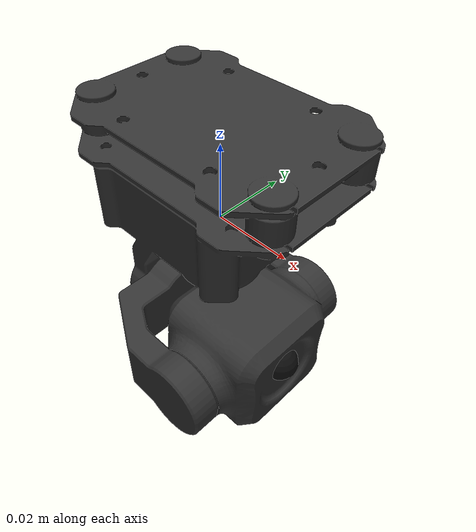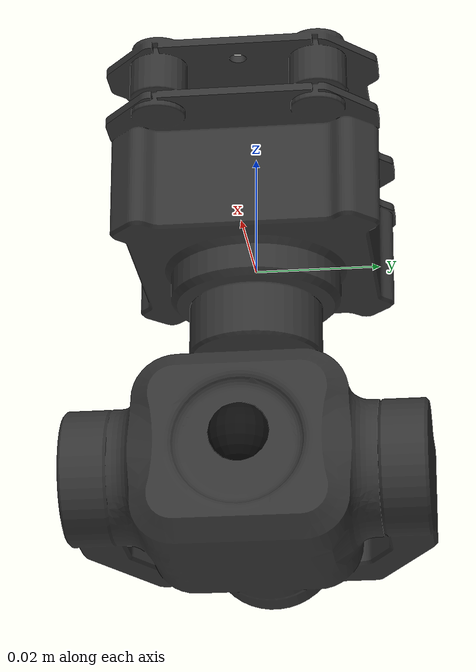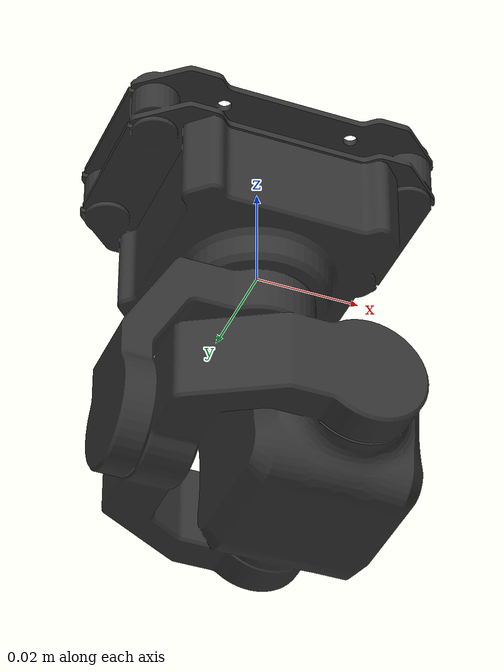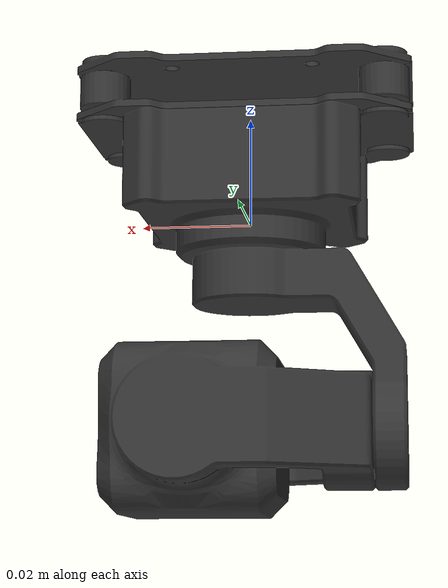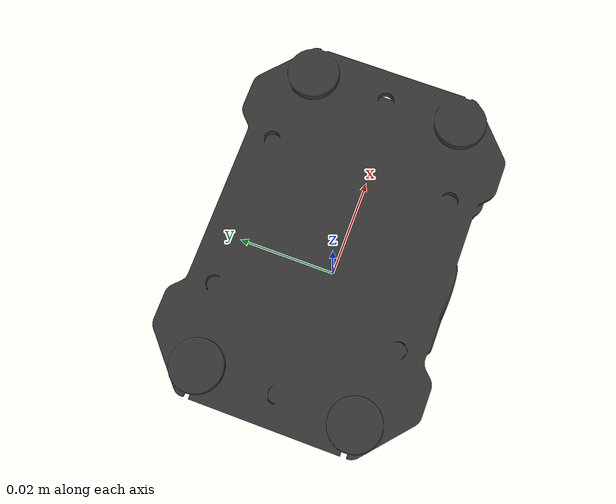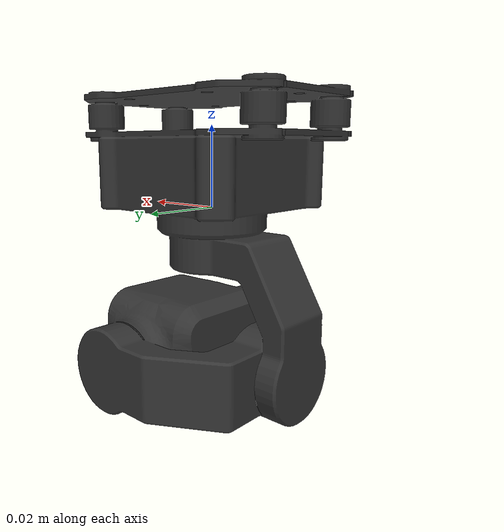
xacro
<?xml version="1.0"?>
<robot xmlns:xacro="http://www.ros.org/wiki/xacro" name="siyi_a8_mini">

  <!-- ──────────────────── colours ──────────────────── -->
  <material name="dark_grey">
    <color rgba="0.2 0.2 0.2 1.0"/>
  </material>
  <material name="black">
    <color rgba="0.05 0.05 0.05 1.0"/>
  </material>

  <!-- ══════════════════════════════════════════════════
       LINKS
       ══════════════════════════════════════════════════ -->

  <!-- 1. gimbal_base – fixed attachment / mounting point -->
  <link name="gimbal_base">
    <visual>
      <origin xyz="0 0 0" rpy="0 0 -1.5708"/>
      <geometry>
        <!--
          The STL was exported from CAD in millimetres; scale to metres.
          Adjust the rpy if the model is oriented differently in the CAD file.
        -->
        <mesh filename="package://siyi_ros2/meshes/a8_mini_gimbal.stl"
              scale="1.0 1.0 1.0"/>
      </geometry>
      <material name="dark_grey"/>
    </visual>
    <collision>
      <!-- Approximate box collision for efficiency -->
      <origin xyz="0 0 -0.0415" rpy="0 0 0"/>
      <geometry>
        <box size="0.060 0.060 0.083"/>
      </geometry>
    </collision>
    <inertial>

      <mass value="0.095"/>
      <origin xyz="0 0 -0.0415" rpy="0 0 0"/>
      <inertia
        ixx="2.04e-5" ixy="0" ixz="0"
        iyy="2.04e-5" iyz="0"
        izz="2.24e-5"/>
    </inertial>
  </link>

  <!-- ── Intermediate gimbal links (massless, for kinematic chain) ── -->

  <!-- 2. gimbal_yaw_link: result of yaw rotation about Z -->
  <link name="gimbal_yaw_link">
    <inertial>
      <mass value="0.001"/>
      <origin xyz="0 0 0" rpy="0 0 0"/>
      <inertia ixx="1e-9" ixy="0" ixz="0"
               iyy="1e-9" iyz="0"
               izz="1e-9"/>
    </inertial>
  </link>

  <!-- 3. gimbal_pitch_link: result of pitch rotation about Y -->
  <link name="gimbal_pitch_link">
    <inertial>
      <mass value="0.001"/>
      <origin xyz="0 0 0" rpy="0 0 0"/>
      <inertia ixx="1e-9" ixy="0" ixz="0"
               iyy="1e-9" iyz="0"
               izz="1e-9"/>
    </inertial>
  </link>

  <!-- 4. gimbal_roll_link: result of roll rotation about X -->
  <link name="gimbal_roll_link">
    <inertial>
      <mass value="0.001"/>
      <origin xyz="0 0 0" rpy="0 0 0"/>
      <inertia ixx="1e-9" ixy="0" ixz="0"
               iyy="1e-9" iyz="0"
               izz="1e-9"/>
    </inertial>
  </link>

  <!-- 5. camera_link – ROS body convention (x-forward boresight, y-left, z-up) -->
  <link name="camera_link">
    <visual>
      <origin xyz="0 0 0" rpy="0 0 0"/>
      <geometry><sphere radius="0.005"/></geometry>
      <material name="black"/>
    </visual>
    <inertial>
      <mass value="0.001"/>
      <origin xyz="0 0 0" rpy="0 0 0"/>
      <inertia ixx="1e-9" ixy="0" ixz="0"
               iyy="1e-9" iyz="0"
               izz="1e-9"/>
    </inertial>
  </link>

  <!-- 6. camera_optical_link – optical convention (z-forward, x-right, y-down) -->
  <link name="camera_optical_link">
    <inertial>
      <mass value="0.001"/>
      <origin xyz="0 0 0" rpy="0 0 0"/>
      <inertia ixx="1e-9" ixy="0" ixz="0"
               iyy="1e-9" iyz="0"
               izz="1e-9"/>
    </inertial>
  </link>

  <!-- ══════════════════════════════════════════════════
       JOINTS
       ══════════════════════════════════════════════════ -->

  <joint name="gimbal_yaw" type="revolute">
    <parent link="gimbal_base"/>
    <child  link="gimbal_yaw_link"/>
    <!-- Drop down from the mount to the level of the camera lens -->
    <origin xyz="0.0 0.0 -0.011" rpy="0 0 0"/>
    <axis xyz="0 0 1"/>
    <limit lower="-2.7925" upper="2.7925" effort="10.0" velocity="3.14"/>
  </joint>

  <joint name="gimbal_roll" type="revolute">
    <parent link="gimbal_yaw_link"/>
    <child  link="gimbal_roll_link"/>
    <!-- Push forward from the yaw axis to the camera lens -->
    <origin xyz="-0.018 0.0 -0.027" rpy="0 0 0"/>
    <axis xyz="1 0 0"/>
    <limit lower="-0.5236" upper="0.5236" effort="10.0" velocity="3.14"/>
  </joint>

  <!--
    Joint 3 (revolute): gimbal_roll_link → gimbal_pitch_link
    ──────────────────────────────────────────────────────────
    The PITCH motor sits on the roll arm, closest to the camera.
  -->
  <joint name="gimbal_pitch" type="revolute">
    <parent link="gimbal_roll_link"/>
    <child  link="gimbal_pitch_link"/>
    <origin xyz="0.027 -0.025 0.001" rpy="0 0 0"/>
    <axis xyz="0 -1 0"/>
    <limit lower="-2.3562" upper="0.7854" effort="10.0" velocity="3.14"/>
  </joint>

  <!--
    Joint 4 (fixed): gimbal_pitch_link → camera_link
    ──────────────────────────────────────────────────
    Coincident with pitch frame.
  -->
  <joint name="gimbal_pitch_to_camera_link" type="fixed">
    <parent link="gimbal_pitch_link"/>
    <child  link="camera_link"/>
    <origin xyz="0.013 0.025 0.001" rpy="0 0 0"/>
  </joint>

  <joint name="camera_link_to_optical" type="fixed">
    <parent link="camera_link"/>
    <child  link="camera_optical_link"/>
    <origin xyz="0 0 0" rpy="-1.5707963 0 -1.5707963"/>

  </joint>

</robot>
